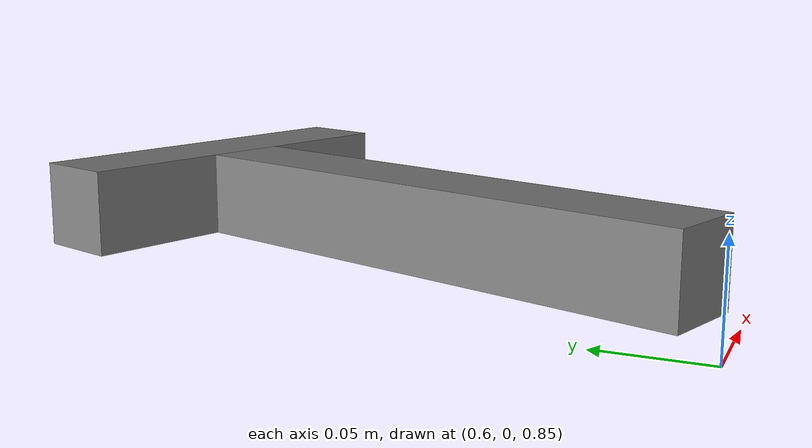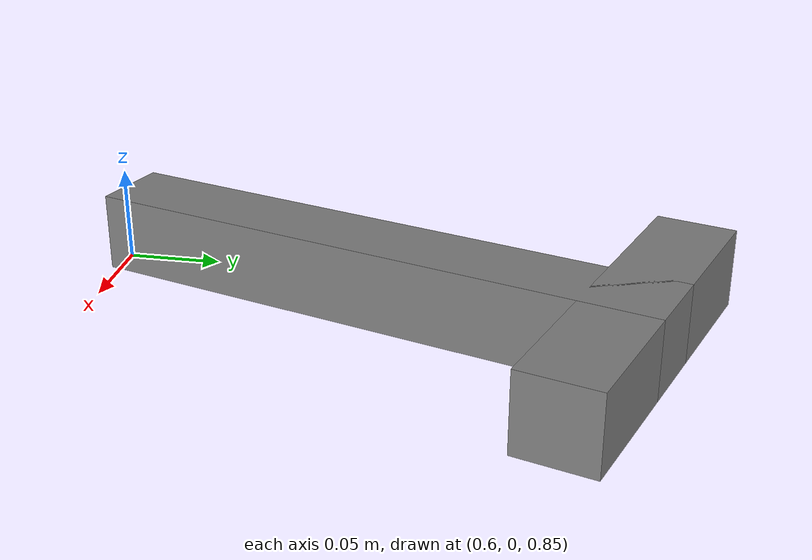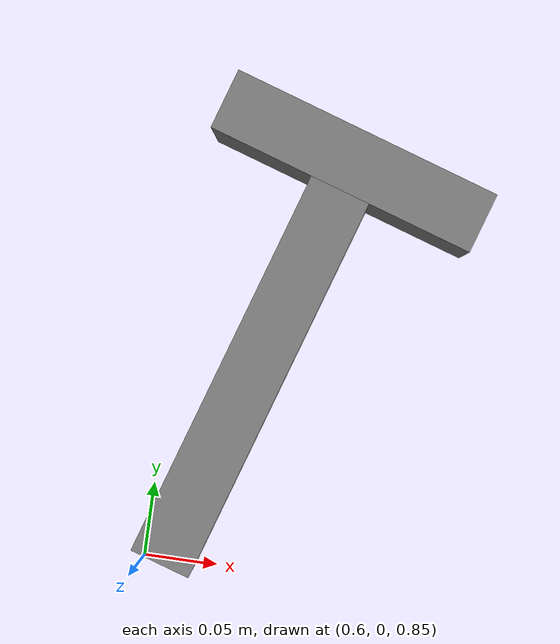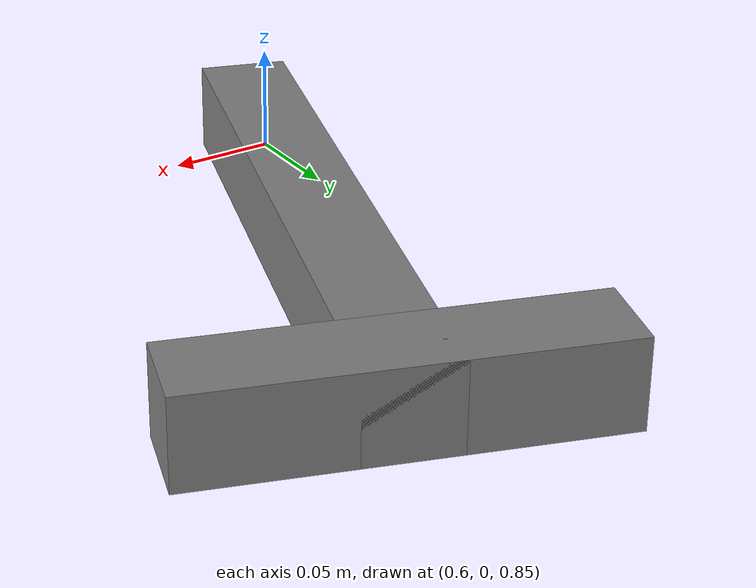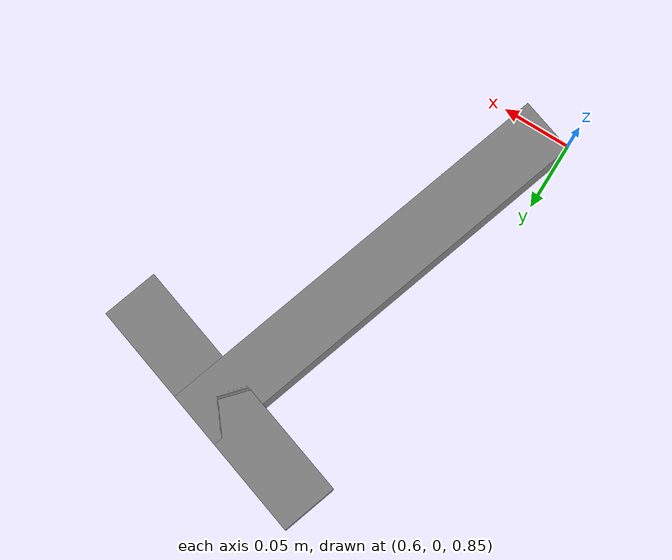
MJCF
<mujoco model="new_cube">
  <asset>
    <texture file="../textures/bread.png" type="2d" name="tex-bread" />
    <material name="bread" reflectance="0.7" texrepeat="15 15" texture="tex-bread" texuniform="true"/>
  </asset>
  <worldbody>
      <body name="object0" pos="0.68 0.2 0.86"  quat="0.80901699 0.         0.         0.58778525">
        <joint name="object0:joint" type="free" damping="0.1" limited="false"></joint>
        <geom size="0.02 0.09 0.02" type="box" condim="4" solimp="0.95 0.95 0.01" name="object0" mass="0.01" friction="1.0 0.3 0.8" pos="0.08 0 0.02"> </geom>
        <geom size="0.15 0.02 0.02" type="box" condim="4" solimp="0.95 0.95 0.01" name="object1" mass="0.01" friction="1.0 0.3 0.8" pos="-0.05 0 0.02"></geom>

      </body>
  </worldbody>
</mujoco>
